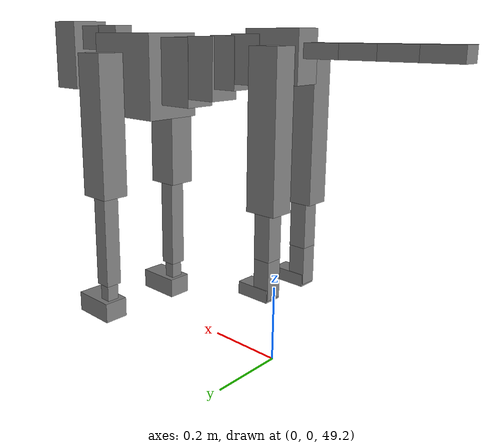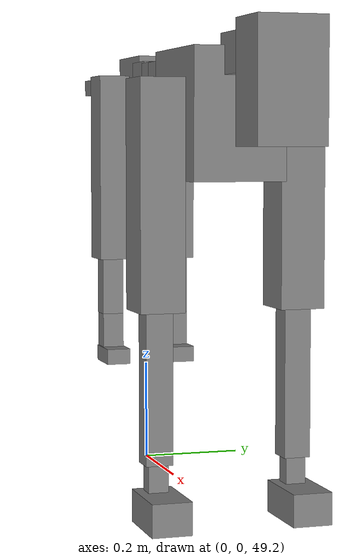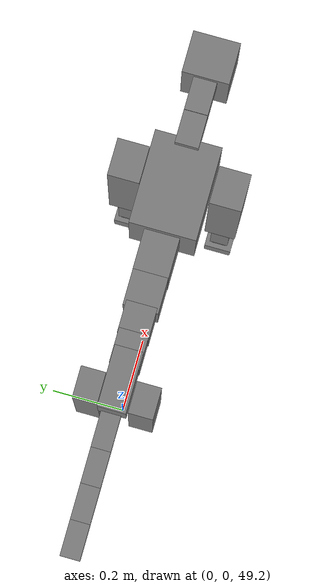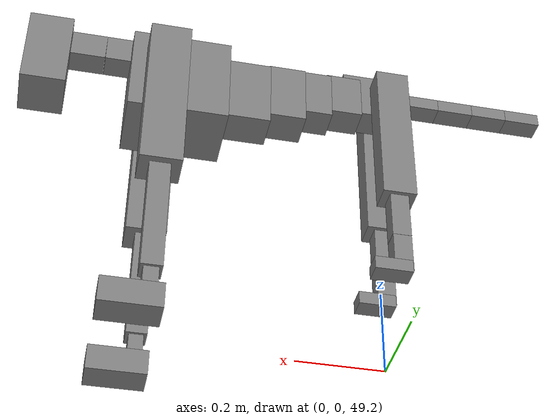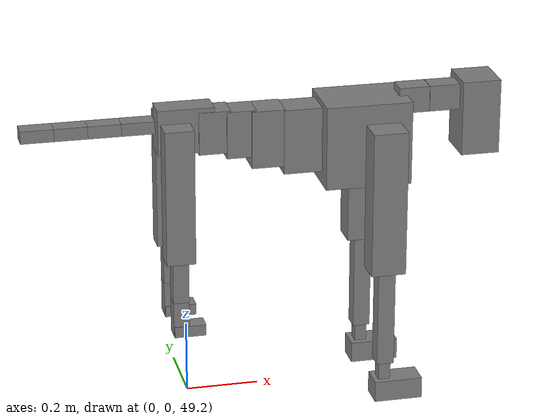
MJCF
<mujoco model="dog">

    <default>
        <joint armature="0.02" stiffness="1" damping="0.2" limited="true"/>
        <geom condim="3" friction="1 0.05 0.05" margin="0.01"/>
        <motor ctrllimited="true" ctrlrange="-1.0 1.0" forcelimited="true" gear="50"/>
    </default>

    <compiler inertiafromgeom="true" angle="radian"/>

    <option timestep="0.016" iterations="50" tolerance="1e-10" solver="Newton" jacobian="dense" cone="pyramidal"/>

    <size nconmax="20000" njmax="60000" nstack="5000000"/>
    <visual>
        <map force="0.1" zfar="30"/>
        <rgba haze="0.15 0.25 0.35 1"/>
        <quality shadowsize="2048"/>
        <global offwidth="800" offheight="800"/>
    </visual>

    <asset>
        <texture type="skybox" builtin="gradient" rgb1="0.3 0.5 0.7" rgb2="0 0 0" width="512" height="512"/>
        <texture name="texplane" type="2d" builtin="checker" rgb1=".2 .3 .4" rgb2=".1 0.15 0.2" width="512" height="512"
                 mark="cross" markrgb=".8 .8 .8"/>
        <texture name="texgeom" type="cube" builtin="flat" mark="cross" width="127" height="1278" rgb1="0.8 0.6 0.4"
                 rgb2="0.8 0.6 0.4" markrgb="1 1 1" random="0.01"/>

        <material name="matplane" reflectance="0.3" texture="texplane" texrepeat="1 1" texuniform="true"/>
        <material name="matgeom" texture="texgeom" texuniform="true" rgba="0.8 0.6 .4 1"/>
    </asset>

    <worldbody>
        <geom name="floor" pos="0 0 0" size="0 0 .25" type="plane" material="matplane" condim="3"/>

        <light directional="false" diffuse=".2 .2 .2" specular="0 0 0" pos="0 0 5" dir="0 0 -1" castshadow="false"/>
        <light mode="targetbodycom" target="torso" directional="false" diffuse=".8 .8 .8" specular="0.3 0.3 0.3"
               pos="0 0 4.0" dir="0 0 -1"/>

        <body name="root" pos="0 0 50">
            <freejoint name="root_1"/>
            <geom type="box" pos="0 0 -0.02" size="0.0774  0.0358  0.063" density="2030"/>

            <body name="spine1" pos="0.054 0 0">
                <joint name="spine1_y" axis="0 1 0" range="0 0.7" limited="true"/>
                <geom type="box" pos="0.02375 0 -0.03" size="0.04375  0.0375  0.05985" density="2030"/>

                <body name="spine2" pos="0.0612 0 0">
                    <joint name="spine2_y" axis="0 1 0" range="-0.15 0.15" limited="true"/>
                    <geom type="box" pos="0.03555  0  -0.04" size="0.04055  0.039  0.06615" density="2030"/>

                    <body name="spine3" pos="0.0730 0 0">
                        <joint name="spine3_y" axis="0 1 0" range="-0.15 0.15" limited="true"/>
                        <geom type="box" pos="0.03555  0  -0.057" size="0.04555  0.0445  0.081" density="2030"/>

                        <body name="spine4" pos="0.0780 0 0">
                            <joint name="spine4_y" axis="0 1 0" range="-0.15 0.15" limited="true"/>
                            <geom type="box" pos="0.05265  0  -0.07" size="0.05265  0.045  0.09135" density="2030"/>

                            <body name="torso" pos="0.1082 0 0">
                                <joint name="torso_y" axis="0 1 0" range="-0.15 0.15" limited="true"/>
                                <geom type="box" pos="0.11925  0  -0.085" size="0.11925  0.085  0.11745"
                                      density="2030"/>

                                <body name="neck1" pos="0.2160  0   0.0180">
                                    <joint name="neck1_y" axis="0 1 0" range="-1.2  -1" limited="true"/>
                                    <geom type="box" pos="0.0423  0  0" size="0.0423  0.03  0.036" density="2325"/>

                                    <body name="neck2" pos="0.0853  0  0">
                                        <joint name="neck2_y" axis="0 1 0" range="0.1  0" limited="true"/>
                                        <geom type="box" pos="0.0423  0  0" size="0.0423  0.03  0.036" density="2325"/>

                                        <body name="head" pos="0.0853  0  0">
                                            <joint name="head_y" axis="0 1 0" range="-0.3  -0.2" limited="true"/>
                                            <geom type="box" pos="0.0531  0  -0.055" size="0.0531  0.06  0.1044"
                                                  density="4030"/>

                                        </body>
                                    </body>
                                </body>

                                <body name="front_shoulder" pos="0.156  0   -0.0480">
                                    <joint name="front_shoulder_y" axis="0 1 0" range="-1 1.5" limited="true"/>
                                    <geom type="box" pos="0 0.13 -0.1787" size="0.0480  0.0410  0.2054" density="1158"/>
                                    <geom type="box" pos="0 -0.13 -0.1787" size="0.0480  0.0410  0.2054"
                                          density="1158"/>

                                    <body name="front_elbow" pos="0  0  -0.3574">
                                        <joint name="front_elbow_y" axis="0 1 0" range="-2 0" limited="true"/>
                                        <geom type="box" pos="0 0.13 -0.1503" size="0.0240  0.0246  0.1503"
                                              density="1081"/>
                                        <geom type="box" pos="0 -0.13 -0.1503" size="0.0240  0.0246  0.1503"
                                              density="1081"/>

                                        <body name="front_wrist" pos="0  0  -0.3006">
                                            <joint name="front_wrist_y" axis="0 1 0" range="-0.2 0" limited="true"/>
                                            <geom type="box" pos="0 0.13 -0.0322" size="0.0168  0.0186  0.0453"
                                                  density="1664"/>
                                            <geom type="box" pos="0 -0.13 -0.0322" size="0.0168  0.0186  0.0453"
                                                  density="1664"/>

                                            <body name="front_finger_end" pos="0  0  -0.0643">
                                                <joint name="front_finger_y" axis="0 1 0" range="-0.4 1"
                                                       limited="true"/>
                                                <geom type="box" pos="0.0366  0.13  -0.0147"
                                                      size="0.0671  0.0366  0.0297" density="1515"/>
                                                <geom type="box" pos="0.0366  -0.13  -0.0147"
                                                      size="0.0671  0.0366  0.0297" density="1515"/>

                                            </body>

                                        </body>
                                    </body>
                                </body>

                            </body>
                        </body>
                    </body>
                </body>
            </body>

            <body name="back_hip" pos="-0.03 0 -0.018">
                <joint name="back_hip_y" axis="0 1 0" range="-1.5 0.3" limited="true"/>
                <geom type="box" pos="0 0.07 -0.1684" size="0.0401  0.0314  0.1912" density="1154"/>
                <geom type="box" pos="0 -0.07 -0.1684" size="0.0401  0.0314  0.1912" density="1154"/>

                <body name="back_knee" pos="0  0  -0.3368">
                    <joint name="back_knee_y" axis="0 1 0" range="0 2.8" limited="true"/>
                    <geom type="box" pos="0 0.07 -0.0616" size="0.0221  0.0218  0.0771" density="1227"/>
                    <geom type="box" pos="0 -0.07 -0.0616" size="0.0221  0.0218  0.0771" density="1227"/>

                    <body name="back_ankle" pos="0  0  -0.1231">
                        <joint name="back_ankle_y" axis="0 1 0" range="-2.2 0" limited="true"/>
                        <geom type="box" pos="0 0.07 -0.0504" size="0.0217  0.0217  0.0617" density="1284"/>
                        <geom type="box" pos="0 -0.07 -0.0504" size="0.0217  0.0217  0.0617" density="1284"/>

                        <body name="back_toe_end" pos="0  0  -0.1009">
                            <joint name="back_toe_y" axis="0 1 0" range="-0.4 1" limited="true"/>
                            <geom type="box" pos="0.0239  0.07  -0.0008" size="0.0437  0.0239  0.0158" density="1515"/>
                            <geom type="box" pos="0.0239  -0.07  -0.0008" size="0.0437  0.0239  0.0158" density="1515"/>

                        </body>
                    </body>
                </body>
            </body>

            <body name="tail1" pos="-0.074 0 -0.006">
                <joint name="tail1_y" axis="0 1 0" range="-0.2 0.2" limited="true"/>
                <geom type="box" pos="-0.0536  0  0" size="0.045  0.025  0.0175" density="1587"/>

                <body name="tail2" pos="-0.09 0 0">
                    <joint name="tail2_y" axis="0 1 0" range="-0.2 0.2" limited="true"/>
                    <geom type="box" pos="-0.0536  0  0" size="0.045  0.025  0.0175" density="1587"/>

                    <body name="tail3" pos="-0.09 0 0">
                        <joint name="tail3_y" axis="0 1 0" range="-0.2 0.2" limited="true"/>
                        <geom type="box" pos="-0.0536  0  0" size="0.045  0.025  0.0175" density="1587"/>

                        <body name="tail4" pos="-0.09 0 0">
                            <joint name="tail4_y" axis="0 1 0" range="-0.2 0.2" limited="true"/>
                            <geom type="box" pos="-0.0536  0  0" size="0.045  0.025  0.0175" density="1587"/>

                        </body>
                    </body>
                </body>
            </body>
        </body>
    </worldbody>

    <actuator>
        <motor joint="spine1_y" forcerange="-150 150     "/>
        <motor joint="spine2_y" forcerange="-150 150     "/>
        <motor joint="spine3_y" forcerange="-150 150     "/>
        <motor joint="spine4_y" forcerange="-150 150     "/>
        <motor joint="torso_y" forcerange="-150 150     "/>
        <motor joint="neck1_y" forcerange="-100 100       "/>
        <motor joint="neck2_y" forcerange="-100 100       "/>
        <motor joint="head_y" forcerange="-150 150       "/>
        <motor joint="front_shoulder_y" forcerange="-174.13 199.10"/>
        <motor joint="front_elbow_y" forcerange="-119.60 159.02"/>
        <motor joint="front_wrist_y" forcerange="-68.56 80.40"/>
        <motor joint="front_finger_y" forcerange="-85.35 69.98"/>
        <motor joint="back_hip_y" forcerange="-274.97 344.14"/>
        <motor joint="back_knee_y" forcerange="-200.22 316.21"/>
        <motor joint="back_angle_y" forcerange="-85.00 162.83"/>
        <motor joint="back_toe_y" forcerange="-48.00 62.86"/>
        <motor joint="tail1_y" forcerange="-50 50     "/>
        <motor joint="tail2_y" forcerange="-50 50     "/>
        <motor joint="tail3_y" forcerange="-50 50     "/>
        <motor joint="tail4_y" forcerange="-50 50     "/>
    </actuator>
</mujoco>
